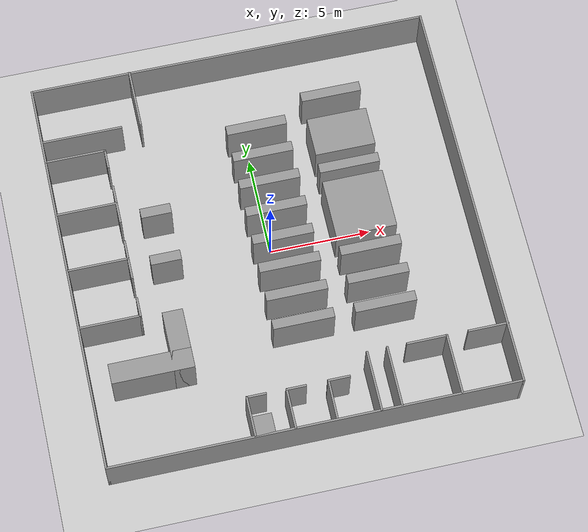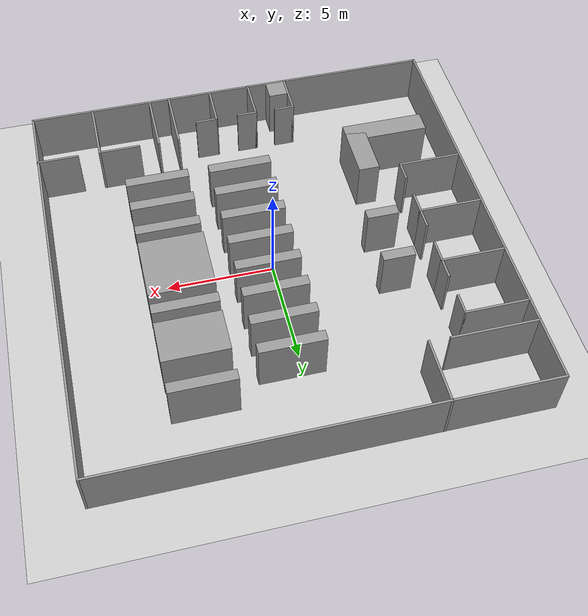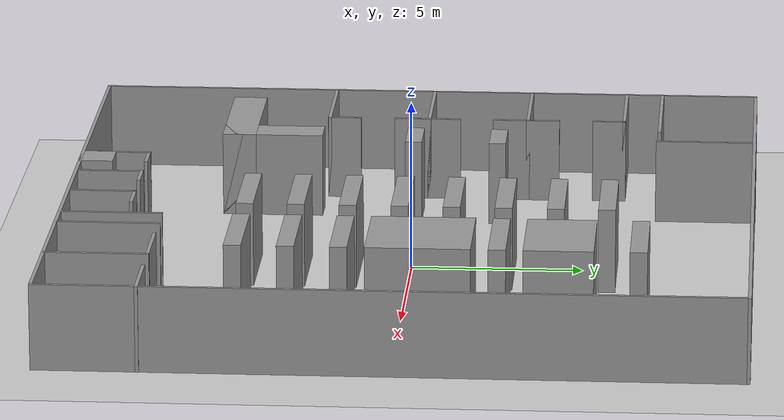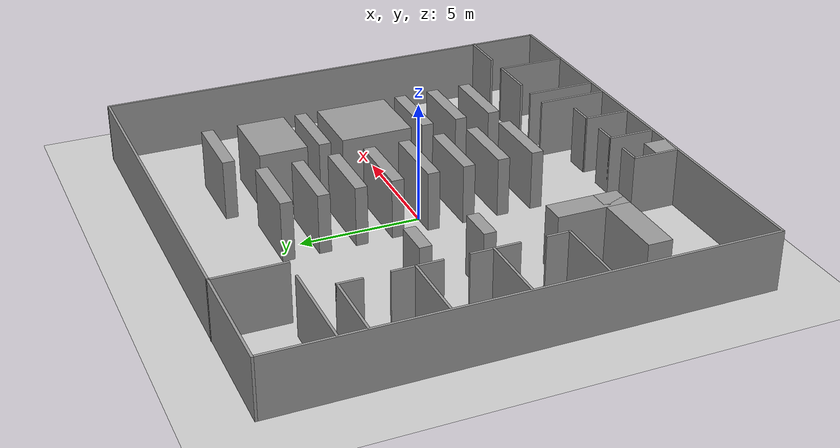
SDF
<sdf version="1.6">
 <world name="default">
  <light name="sun" type="directional">
   <pose>0 0 10 0 -0 0</pose>
   <diffuse>0.8 0.8 0.8 1</diffuse>
   <specular>0.2 0.2 0.2 1</specular>
   <attenuation>
    <range>1000</range>
    <constant>0.9</constant>
    <linear>0.01</linear>
    <quadratic>0.001</quadratic>
   </attenuation>
   <direction>-0.5 0.1 -0.9</direction>
  </light>
  <model name="ground_plane">
   <static>1</static>
   <link name="link">
    <collision name="collision">
     <geometry><plane><normal>0 0 1</normal><size>100 100</size></plane></geometry>
     <surface>
      <contact><collide_bitmask>65535</collide_bitmask></contact>
      <friction><ode><mu>100</mu><mu2>50</mu2></ode></friction>
     </surface>
    </collision>
    <visual name="visual">
     <cast_shadows>0</cast_shadows>
     <geometry><plane><normal>0 0 1</normal><size>100 100</size></plane></geometry>
     <material>
      <script><uri>file://media/materials/scripts/gazebo.material</uri><name>Gazebo/Grey</name></script>
     </material>
    </visual>
   </link>
  </model>
  <gravity>0 0 -9.8</gravity>
  <magnetic_field>6e-06 2.3e-05 -4.2e-05</magnetic_field>
  <atmosphere type="adiabatic"/>
  <physics name="default_physics" default="0" type="ode">
   <max_step_size>0.001</max_step_size>
   <real_time_factor>1</real_time_factor>
   <real_time_update_rate>1000</real_time_update_rate>
  </physics>
  <scene><ambient>0.4 0.4 0.4 1</ambient><background>0.7 0.7 0.7 1</background><shadows>1</shadows></scene>
  <audio><device>default</device></audio>
  <spherical_coordinates>
   <surface_model>EARTH_WGS84</surface_model>
   <latitude_deg>0</latitude_deg>
   <longitude_deg>0</longitude_deg>
   <elevation>0</elevation>
   <heading_deg>0</heading_deg>
  </spherical_coordinates>
  <model name="bibeg">
   <link name="Wall_1">
    <collision name="Wall_1_Collision">
     <geometry><box><size>20 0.1 2.5</size></box></geometry>
     <pose>0 0 1.25 0 -0 0</pose>
    </collision>
    <visual name="Wall_1_Visual">
     <pose>0 0 1.25 0 -0 0</pose>
     <geometry><box><size>20 0.1 2.5</size></box></geometry>
     <material>
      <script><uri>file://media/materials/scripts/gazebo.material</uri><name>Gazebo/Grey</name></script>
      <ambient>1 1 1 1</ambient>
     </material>
     <meta><layer>0</layer></meta>
    </visual>
    <pose>-0.009 -9.957 0 0 -0 0</pose>
   </link>
   <link name="Wall_11">
    <collision name="Wall_11_Collision">
     <geometry><box><size>2 0.1 2.5</size></box></geometry>
     <pose>0 0 1.25 0 -0 0</pose>
    </collision>
    <visual name="Wall_11_Visual">
     <pose>0 0 1.25 0 -0 0</pose>
     <geometry><box><size>2 0.1 2.5</size></box></geometry>
     <material>
      <script><uri>file://media/materials/scripts/gazebo.material</uri><name>Gazebo/Grey</name></script>
      <ambient>1 1 1 1</ambient>
     </material>
     <meta><layer>0</layer></meta>
    </visual>
    <pose>-1.003 -8.963 0 0 -0 1.5708</pose>
   </link>
   <link name="Wall_12">
    <collision name="Wall_12_Collision">
     <geometry><box><size>1 0.1 2.5</size></box></geometry>
     <pose>0 0 1.25 0 -0 0</pose>
    </collision>
    <visual name="Wall_12_Visual">
     <pose>0 0 1.25 0 -0 0</pose>
     <geometry><box><size>1 0.1 2.5</size></box></geometry>
     <material>
      <script><uri>file://media/materials/scripts/gazebo.material</uri><name>Gazebo/Grey</name></script>
      <ambient>1 1 1 1</ambient>
     </material>
     <meta><layer>0</layer></meta>
    </visual>
    <pose>-0.553 -8.013 0 0 -0 0</pose>
   </link>
   <link name="Wall_14">
    <collision name="Wall_14_Collision">
     <geometry><box><size>1.95 0.1 2.5</size></box></geometry>
     <pose>0 0 1.25 0 -0 0</pose>
    </collision>
    <visual name="Wall_14_Visual">
     <pose>0 0 1.25 0 -0 0</pose>
     <geometry><box><size>1.95 0.1 2.5</size></box></geometry>
     <material>
      <script><uri>file://media/materials/scripts/gazebo.material</uri><name>Gazebo/Grey</name></script>
      <ambient>1 1 1 1</ambient>
     </material>
     <meta><layer>0</layer></meta>
    </visual>
    <pose>0.998 -8.928 0 0 -0 1.55999</pose>
   </link>
   <link name="Wall_15">
    <collision name="Wall_15_Collision">
     <geometry><box><size>1.1 0.1 2.5</size></box></geometry>
     <pose>0 0 1.25 0 -0 0</pose>
    </collision>
    <visual name="Wall_15_Visual">
     <pose>0 0 1.25 0 -0 0</pose>
     <geometry><box><size>1.1 0.1 2.5</size></box></geometry>
     <material>
      <script><uri>file://media/materials/scripts/gazebo.material</uri><name>Gazebo/Grey</name></script>
      <ambient>1 1 1 1</ambient>
     </material>
     <meta><layer>0</layer></meta>
    </visual>
    <pose>1.508 -8.003 0 0 -0 0</pose>
   </link>
   <link name="Wall_17">
    <collision name="Wall_17_Collision">
     <geometry><box><size>3 0.1 2.5</size></box></geometry>
     <pose>0 0 1.25 0 -0 0</pose>
    </collision>
    <visual name="Wall_17_Visual">
     <pose>0 0 1.25 0 -0 0</pose>
     <geometry><box><size>3 0.1 2.5</size></box></geometry>
     <material>
      <script><uri>file://media/materials/scripts/gazebo.material</uri><name>Gazebo/Grey</name></script>
      <ambient>1 1 1 1</ambient>
     </material>
     <meta><layer>0</layer></meta>
    </visual>
    <pose>3.1 -8.48345 0 0 -0 1.5708</pose>
   </link>
   <link name="Wall_2">
    <collision name="Wall_2_Collision">
     <geometry><box><size>20 0.1 2.5</size></box></geometry>
     <pose>0 0 1.25 0 -0 0</pose>
    </collision>
    <visual name="Wall_2_Visual">
     <pose>0 0 1.25 0 -0 0</pose>
     <geometry><box><size>20 0.1 2.5</size></box></geometry>
     <material>
      <script><uri>file://media/materials/scripts/gazebo.material</uri><name>Gazebo/Grey</name></script>
      <ambient>1 1 1 1</ambient>
     </material>
     <meta><layer>0</layer></meta>
    </visual>
    <pose>9.941 -0.007 0 0 -0 1.5708</pose>
   </link>
   <link name="Wall_20">
    <collision name="Wall_20_Collision">
     <geometry><box><size>3 0.1 2.5</size></box></geometry>
     <pose>0 0 1.25 0 -0 0</pose>
    </collision>
    <visual name="Wall_20_Visual">
     <pose>0 0 1.25 0 -0 0</pose>
     <geometry><box><size>3 0.1 2.5</size></box></geometry>
     <material>
      <script><uri>file://media/materials/scripts/gazebo.material</uri><name>Gazebo/Grey</name></script>
      <ambient>1 1 1 1</ambient>
     </material>
     <meta><layer>0</layer></meta>
    </visual>
    <pose>4.085 -8.443 0 0 -0 1.5708</pose>
   </link>
   <link name="Wall_23">
    <collision name="Wall_23_Collision">
     <geometry><box><size>3 0.1 2.5</size></box></geometry>
     <pose>0 0 1.25 0 -0 0</pose>
    </collision>
    <visual name="Wall_23_Visual">
     <pose>0 0 1.25 0 -0 0</pose>
     <geometry><box><size>3 0.1 2.5</size></box></geometry>
     <material>
      <script><uri>file://media/materials/scripts/gazebo.material</uri><name>Gazebo/Grey</name></script>
      <ambient>1 1 1 1</ambient>
     </material>
     <meta><layer>0</layer></meta>
    </visual>
    <pose>6.98189 -8.46334 0 0 -0 1.5708</pose>
   </link>
   <link name="Wall_24">
    <collision name="Wall_24_Collision">
     <geometry><box><size>2 0.1 2.5</size></box></geometry>
     <pose>0 0 1.25 0 -0 0</pose>
    </collision>
    <visual name="Wall_24_Visual">
     <pose>0 0 1.25 0 -0 0</pose>
     <geometry><box><size>2 0.1 2.5</size></box></geometry>
     <material>
      <script><uri>file://media/materials/scripts/gazebo.material</uri><name>Gazebo/Grey</name></script>
      <ambient>1 1 1 1</ambient>
     </material>
     <meta><layer>0</layer></meta>
    </visual>
    <pose>6.01177 -7.01334 0 0 -0 3.14159</pose>
   </link>
   <link name="Wall_26">
    <collision name="Wall_26_Collision">
     <geometry><box><size>2 0.1 2.5</size></box></geometry>
     <pose>0 0 1.25 0 -0 0</pose>
    </collision>
    <visual name="Wall_26_Visual">
     <pose>0 0 1.25 0 -0 0</pose>
     <geometry><box><size>2 0.1 2.5</size></box></geometry>
     <material>
      <script><uri>file://media/materials/scripts/gazebo.material</uri><name>Gazebo/Grey</name></script>
      <ambient>1 1 1 1</ambient>
     </material>
     <meta><layer>0</layer></meta>
    </visual>
    <pose>9.009 -7.017 0 0 -0 3.14159</pose>
   </link>
   <link name="Wall_28">
    <collision name="Wall_28_Collision">
     <geometry><box><size>3 0.1 2.5</size></box></geometry>
     <pose>0 0 1.25 0 -0 0</pose>
    </collision>
    <visual name="Wall_28_Visual">
     <pose>0 0 1.25 0 -0 0</pose>
     <geometry><box><size>3 0.1 2.5</size></box></geometry>
     <material>
      <script><uri>file://media/materials/scripts/gazebo.material</uri><name>Gazebo/Grey</name></script>
      <ambient>1 1 1 1</ambient>
     </material>
     <meta><layer>0</layer></meta>
    </visual>
    <pose>-5.017 8.507 0 0 -0 -1.5708</pose>
   </link>
   <link name="Wall_3">
    <collision name="Wall_3_Collision">
     <geometry><box><size>20 0.1 2.5</size></box></geometry>
     <pose>0 0 1.25 0 -0 0</pose>
    </collision>
    <visual name="Wall_3_Visual">
     <pose>0 0 1.25 0 -0 0</pose>
     <geometry><box><size>20 0.1 2.5</size></box></geometry>
     <material>
      <script><uri>file://media/materials/scripts/gazebo.material</uri><name>Gazebo/Grey</name></script>
      <ambient>1 1 1 1</ambient>
     </material>
     <meta><layer>0</layer></meta>
    </visual>
    <pose>-0.009 9.943 0 0 -0 3.14159</pose>
   </link>
   <link name="Wall_30">
    <collision name="Wall_30_Collision">
     <geometry><box><size>4 0.1 2.5</size></box></geometry>
     <pose>0 0 1.25 0 -0 0</pose>
    </collision>
    <visual name="Wall_30_Visual">
     <pose>0 0 1.25 0 -0 0</pose>
     <geometry><box><size>4 0.1 2.5</size></box></geometry>
     <material>
      <script><uri>file://media/materials/scripts/gazebo.material</uri><name>Gazebo/Grey</name></script>
      <ambient>1 1 1 1</ambient>
     </material>
     <meta><layer>0</layer></meta>
    </visual>
    <pose>-7.94645 7.08678 0 0 -0 0</pose>
   </link>
   <link name="Wall_33">
    <collision name="Wall_33_Collision">
     <geometry><box><size>3 0.1 2.5</size></box></geometry>
     <pose>0 0 1.25 0 -0 0</pose>
    </collision>
    <visual name="Wall_33_Visual">
     <pose>0 0 1.25 0 -0 0</pose>
     <geometry><box><size>3 0.1 2.5</size></box></geometry>
     <material>
      <script><uri>file://media/materials/scripts/gazebo.material</uri><name>Gazebo/Grey</name></script>
      <ambient>1 1 1 1</ambient>
     </material>
     <meta><layer>0</layer></meta>
    </visual>
    <pose>-8.46 6.002 0 0 -0 0</pose>
   </link>
   <link name="Wall_34">
    <collision name="Wall_34_Collision">
     <geometry><box><size>1 0.1 2.5</size></box></geometry>
     <pose>0 0 1.25 0 -0 0</pose>
    </collision>
    <visual name="Wall_34_Visual">
     <pose>0 0 1.25 0 -0 0</pose>
     <geometry><box><size>1 0.1 2.5</size></box></geometry>
     <material>
      <script><uri>file://media/materials/scripts/gazebo.material</uri><name>Gazebo/Grey</name></script>
      <ambient>1 1 1 1</ambient>
     </material>
     <meta><layer>0</layer></meta>
    </visual>
    <pose>-7.01 5.552 0 0 -0 -1.5708</pose>
   </link>
   <link name="Wall_36">
    <collision name="Wall_36_Collision">
     <geometry><box><size>3 0.1 2.5</size></box></geometry>
     <pose>0 0 1.25 0 -0 0</pose>
    </collision>
    <visual name="Wall_36_Visual">
     <pose>0 0 1.25 0 -0 0</pose>
     <geometry><box><size>3 0.1 2.5</size></box></geometry>
     <material>
      <script><uri>file://media/materials/scripts/gazebo.material</uri><name>Gazebo/Grey</name></script>
      <ambient>1 1 1 1</ambient>
     </material>
     <meta><layer>0</layer></meta>
    </visual>
    <pose>-8.433 3.093 0 0 -0 0</pose>
   </link>
   <link name="Wall_37">
    <collision name="Wall_37_Collision">
     <geometry><box><size>1 0.1 2.5</size></box></geometry>
     <pose>0 0 1.25 0 -0 0</pose>
    </collision>
    <visual name="Wall_37_Visual">
     <pose>0 0 1.25 0 -0 0</pose>
     <geometry><box><size>1 0.1 2.5</size></box></geometry>
     <material>
      <script><uri>file://media/materials/scripts/gazebo.material</uri><name>Gazebo/Grey</name></script>
      <ambient>1 1 1 1</ambient>
     </material>
     <meta><layer>0</layer></meta>
    </visual>
    <pose>-6.983 3.543 0 0 -0 1.5708</pose>
   </link>
   <link name="Wall_4">
    <collision name="Wall_4_Collision">
     <geometry><box><size>20 0.1 2.5</size></box></geometry>
     <pose>0 0 1.25 0 -0 0</pose>
    </collision>
    <visual name="Wall_4_Visual">
     <pose>0 0 1.25 0 -0 0</pose>
     <geometry><box><size>20 0.1 2.5</size></box></geometry>
     <material>
      <script><uri>file://media/materials/scripts/gazebo.material</uri><name>Gazebo/Grey</name></script>
      <ambient>1 1 1 1</ambient>
     </material>
     <meta><layer>0</layer></meta>
    </visual>
    <pose>-9.959 -0.007 0 0 -0 -1.5708</pose>
   </link>
   <link name="Wall_40">
    <collision name="Wall_40_Collision">
     <geometry><box><size>1.1 0.1 2.5</size></box></geometry>
     <pose>0 0 1.25 0 -0 0</pose>
    </collision>
    <visual name="Wall_40_Visual">
     <pose>0 0 1.25 0 -0 0</pose>
     <geometry><box><size>1.1 0.1 2.5</size></box></geometry>
     <material>
      <script><uri>file://media/materials/scripts/gazebo.material</uri><name>Gazebo/Grey</name></script>
      <ambient>1 1 1 1</ambient>
     </material>
     <meta><layer>0</layer></meta>
    </visual>
    <pose>-6.983 2.593 0 0 -0 -1.5708</pose>
   </link>
   <link name="Wall_42">
    <collision name="Wall_42_Collision">
     <geometry><box><size>3 0.1 2.5</size></box></geometry>
     <pose>0 0 1.25 0 -0 0</pose>
    </collision>
    <visual name="Wall_42_Visual">
     <pose>0 0 1.25 0 -0 0</pose>
     <geometry><box><size>3 0.1 2.5</size></box></geometry>
     <material>
      <script><uri>file://media/materials/scripts/gazebo.material</uri><name>Gazebo/Grey</name></script>
      <ambient>1 1 1 1</ambient>
     </material>
     <meta><layer>0</layer></meta>
    </visual>
    <pose>-8.433 0.104 0 0 -0 0</pose>
   </link>
   <link name="Wall_43">
    <collision name="Wall_43_Collision">
     <geometry><box><size>1 0.1 2.5</size></box></geometry>
     <pose>0 0 1.25 0 -0 0</pose>
    </collision>
    <visual name="Wall_43_Visual">
     <pose>0 0 1.25 0 -0 0</pose>
     <geometry><box><size>1 0.1 2.5</size></box></geometry>
     <material>
      <script><uri>file://media/materials/scripts/gazebo.material</uri><name>Gazebo/Grey</name></script>
      <ambient>1 1 1 1</ambient>
     </material>
     <meta><layer>0</layer></meta>
    </visual>
    <pose>-6.983 0.554 0 0 -0 1.5708</pose>
   </link>
   <link name="Wall_45">
    <collision name="Wall_45_Collision">
     <geometry><box><size>1.1 0.1 2.5</size></box></geometry>
     <pose>0 0 1.25 0 -0 0</pose>
    </collision>
    <visual name="Wall_45_Visual">
     <pose>0 0 1.25 0 -0 0</pose>
     <geometry><box><size>1.1 0.1 2.5</size></box></geometry>
     <material>
      <script><uri>file://media/materials/scripts/gazebo.material</uri><name>Gazebo/Grey</name></script>
      <ambient>1 1 1 1</ambient>
     </material>
     <meta><layer>0</layer></meta>
    </visual>
    <pose>-6.983 -0.396 0 0 -0 -1.5708</pose>
   </link>
   <link name="Wall_47">
    <collision name="Wall_47_Collision">
     <geometry><box><size>3 0.1 2.5</size></box></geometry>
     <pose>0 0 1.25 0 -0 0</pose>
    </collision>
    <visual name="Wall_47_Visual">
     <pose>0 0 1.25 0 -0 0</pose>
     <geometry><box><size>3 0.1 2.5</size></box></geometry>
     <material>
      <script><uri>file://media/materials/scripts/gazebo.material</uri><name>Gazebo/Grey</name></script>
      <ambient>1 1 1 1</ambient>
     </material>
     <meta><layer>0</layer></meta>
    </visual>
    <pose>-8.42 -2.911 0 0 -0 0</pose>
   </link>
   <link name="Wall_48">
    <collision name="Wall_48_Collision">
     <geometry><box><size>1 0.1 2.5</size></box></geometry>
     <pose>0 0 1.25 0 -0 0</pose>
    </collision>
    <visual name="Wall_48_Visual">
     <pose>0 0 1.25 0 -0 0</pose>
     <geometry><box><size>1 0.1 2.5</size></box></geometry>
     <material>
      <script><uri>file://media/materials/scripts/gazebo.material</uri><name>Gazebo/Grey</name></script>
      <ambient>1 1 1 1</ambient>
     </material>
     <meta><layer>0</layer></meta>
    </visual>
    <pose>-6.97 -2.461 0 0 -0 1.5708</pose>
   </link>
   <link name="Wall_50">
    <collision name="Wall_50_Collision">
     <geometry><box><size>4 1 2.5</size></box></geometry>
     <pose>0 0 1.25 0 -0 0</pose>
    </collision>
    <visual name="Wall_50_Visual">
     <pose>0 0 1.25 0 -0 0</pose>
     <geometry><box><size>4 1 2.5</size></box></geometry>
     <material>
      <script><uri>file://media/materials/scripts/gazebo.material</uri><name>Gazebo/Grey</name></script>
      <ambient>1 1 1 1</ambient>
     </material>
     <meta><layer>0</layer></meta>
    </visual>
    <pose>-6.94939 -5.487 0 0 -0 0</pose>
   </link>
   <link name="Wall_51">
    <collision name="Wall_51_Collision">
     <geometry><box><size>3 1 2.5</size></box></geometry>
     <pose>0 0 1.25 0 -0 0</pose>
    </collision>
    <visual name="Wall_51_Visual">
     <pose>0 0 1.25 0 -0 0</pose>
     <geometry><box><size>3 1 2.5</size></box></geometry>
     <material>
      <script><uri>file://media/materials/scripts/gazebo.material</uri><name>Gazebo/Grey</name></script>
      <ambient>1 1 1 1</ambient>
     </material>
     <meta><layer>0</layer></meta>
    </visual>
    <pose>-5.44939 -4.487 0 0 -0 1.5708</pose>
   </link>
   <link name="Wall_53">
    <collision name="Wall_53_Collision">
     <geometry><box><size>1.5 0.5 2.5</size></box></geometry>
     <pose>0 0 1.25 0 -0 0</pose>
    </collision>
    <visual name="Wall_53_Visual">
     <pose>0 0 1.25 0 -0 0</pose>
     <geometry><box><size>1.5 0.5 2.5</size></box></geometry>
     <material>
      <script><uri>file://media/materials/scripts/gazebo.material</uri><name>Gazebo/Grey</name></script>
      <ambient>1 1 1 1</ambient>
     </material>
     <meta><layer>0</layer></meta>
    </visual>
    <pose>-5.22251 -0.227 0 0 -0 0</pose>
   </link>
   <link name="Wall_55">
    <collision name="Wall_55_Collision">
     <geometry><box><size>1.5 0.5 2.5</size></box></geometry>
     <pose>0 0 1.25 0 -0 0</pose>
    </collision>
    <visual name="Wall_55_Visual">
     <pose>0 0 1.25 0 -0 0</pose>
     <geometry><box><size>1.5 0.5 2.5</size></box></geometry>
     <material>
      <script><uri>file://media/materials/scripts/gazebo.material</uri><name>Gazebo/Grey</name></script>
      <ambient>1 1 1 1</ambient>
     </material>
     <meta><layer>0</layer></meta>
    </visual>
    <pose>-5.20702 2.28602 0 0 -0 0</pose>
   </link>
   <link name="Wall_57">
    <collision name="Wall_57_Collision">
     <geometry><box><size>3 0.5 2.5</size></box></geometry>
     <pose>0 0 1.25 0 -0 0</pose>
    </collision>
    <visual name="Wall_57_Visual">
     <pose>0 0 1.25 0 -0 0</pose>
     <geometry><box><size>3 0.5 2.5</size></box></geometry>
     <material>
      <script><uri>file://media/materials/scripts/gazebo.material</uri><name>Gazebo/Grey</name></script>
      <ambient>1 1 1 1</ambient>
     </material>
     <meta><layer>0</layer></meta>
    </visual>
    <pose>0.538131 5.76561 0 0 -0 0</pose>
   </link>
   <link name="Wall_59">
    <collision name="Wall_59_Collision">
     <geometry><box><size>3 0.5 2.5</size></box></geometry>
     <pose>0 0 1.25 0 -0 0</pose>
    </collision>
    <visual name="Wall_59_Visual">
     <pose>0 0 1.25 0 -0 0</pose>
     <geometry><box><size>3 0.5 2.5</size></box></geometry>
     <material>
      <script><uri>file://media/materials/scripts/gazebo.material</uri><name>Gazebo/Grey</name></script>
      <ambient>1 1 1 1</ambient>
     </material>
     <meta><layer>0</layer></meta>
    </visual>
    <pose>0.537392 4.28587 0 0 -0 0</pose>
   </link>
   <link name="Wall_61">
    <collision name="Wall_61_Collision">
     <geometry><box><size>3 0.5 2.5</size></box></geometry>
     <pose>0 0 1.25 0 -0 0</pose>
    </collision>
    <visual name="Wall_61_Visual">
     <pose>0 0 1.25 0 -0 0</pose>
     <geometry><box><size>3 0.5 2.5</size></box></geometry>
     <material>
      <script><uri>file://media/materials/scripts/gazebo.material</uri><name>Gazebo/Grey</name></script>
      <ambient>1 1 1 1</ambient>
     </material>
     <meta><layer>0</layer></meta>
    </visual>
    <pose>0.537915 2.78187 0 0 -0 0</pose>
   </link>
   <link name="Wall_63">
    <collision name="Wall_63_Collision">
     <geometry><box><size>3 0.5 2.5</size></box></geometry>
     <pose>0 0 1.25 0 -0 0</pose>
    </collision>
    <visual name="Wall_63_Visual">
     <pose>0 0 1.25 0 -0 0</pose>
     <geometry><box><size>3 0.5 2.5</size></box></geometry>
     <material>
      <script><uri>file://media/materials/scripts/gazebo.material</uri><name>Gazebo/Grey</name></script>
      <ambient>1 1 1 1</ambient>
     </material>
     <meta><layer>0</layer></meta>
    </visual>
    <pose>0.538131 1.27887 0 0 -0 0</pose>
   </link>
   <link name="Wall_65">
    <collision name="Wall_65_Collision">
     <geometry><box><size>3 0.5 2.5</size></box></geometry>
     <pose>0 0 1.25 0 -0 0</pose>
    </collision>
    <visual name="Wall_65_Visual">
     <pose>0 0 1.25 0 -0 0</pose>
     <geometry><box><size>3 0.5 2.5</size></box></geometry>
     <material>
      <script><uri>file://media/materials/scripts/gazebo.material</uri><name>Gazebo/Grey</name></script>
      <ambient>1 1 1 1</ambient>
     </material>
     <meta><layer>0</layer></meta>
    </visual>
    <pose>0.537392 -0.225261 0 0 -0 0</pose>
   </link>
   <link name="Wall_67">
    <collision name="Wall_67_Collision">
     <geometry><box><size>3 0.5 2.5</size></box></geometry>
     <pose>0 0 1.25 0 -0 0</pose>
    </collision>
    <visual name="Wall_67_Visual">
     <pose>0 0 1.25 0 -0 0</pose>
     <geometry><box><size>3 0.5 2.5</size></box></geometry>
     <material>
      <script><uri>file://media/materials/scripts/gazebo.material</uri><name>Gazebo/Grey</name></script>
      <ambient>1 1 1 1</ambient>
     </material>
     <meta><layer>0</layer></meta>
    </visual>
    <pose>0.537392 -1.72813 0 0 -0 0</pose>
   </link>
   <link name="Wall_69">
    <collision name="Wall_69_Collision">
     <geometry><box><size>3 0.5 2.5</size></box></geometry>
     <pose>0 0 1.25 0 -0 0</pose>
    </collision>
    <visual name="Wall_69_Visual">
     <pose>0 0 1.25 0 -0 0</pose>
     <geometry><box><size>3 0.5 2.5</size></box></geometry>
     <material>
      <script><uri>file://media/materials/scripts/gazebo.material</uri><name>Gazebo/Grey</name></script>
      <ambient>1 1 1 1</ambient>
     </material>
     <meta><layer>0</layer></meta>
    </visual>
    <pose>0.536217 -3.23139 0 0 -0 3.14159</pose>
   </link>
   <link name="Wall_7">
    <collision name="Wall_7_Collision">
     <geometry><box><size>2 0.1 2.5</size></box></geometry>
     <pose>0 0 1.25 0 -0 0</pose>
    </collision>
    <visual name="Wall_7_Visual">
     <pose>0 0 1.25 0 -0 0</pose>
     <geometry><box><size>2 0.1 2.5</size></box></geometry>
     <material>
      <script><uri>file://media/materials/scripts/gazebo.material</uri><name>Gazebo/Grey</name></script>
      <ambient>1 1 1 1</ambient>
     </material>
     <meta><layer>0</layer></meta>
    </visual>
    <pose>-2.914 -8.943 0 0 -0 1.5708</pose>
   </link>
   <link name="Wall_71">
    <collision name="Wall_71_Collision">
     <geometry><box><size>3 0.5 2.5</size></box></geometry>
     <pose>0 0 1.25 0 -0 0</pose>
    </collision>
    <visual name="Wall_71_Visual">
     <pose>0 0 1.25 0 -0 0</pose>
     <geometry><box><size>3 0.5 2.5</size></box></geometry>
     <material>
      <script><uri>file://media/materials/scripts/gazebo.material</uri><name>Gazebo/Grey</name></script>
      <ambient>1 1 1 1</ambient>
     </material>
     <meta><layer>0</layer></meta>
    </visual>
    <pose>0.537262 -4.712 0 0 -0 0</pose>
   </link>
   <link name="Wall_73">
    <collision name="Wall_73_Collision">
     <geometry><box><size>3 0.5 2.5</size></box></geometry>
     <pose>0 0 1.25 0 -0 0</pose>
    </collision>
    <visual name="Wall_73_Visual">
     <pose>0 0 1.25 0 -0 0</pose>
     <geometry><box><size>3 0.5 2.5</size></box></geometry>
     <material>
      <script><uri>file://media/materials/scripts/gazebo.material</uri><name>Gazebo/Grey</name></script>
      <ambient>1 1 1 1</ambient>
     </material>
     <meta><layer>0</layer></meta>
    </visual>
    <pose>4.53978 -4.71213 0 0 -0 0</pose>
   </link>
   <link name="Wall_75">
    <collision name="Wall_75_Collision">
     <geometry><box><size>3 0.5 2.5</size></box></geometry>
     <pose>0 0 1.25 0 -0 0</pose>
    </collision>
    <visual name="Wall_75_Visual">
     <pose>0 0 1.25 0 -0 0</pose>
     <geometry><box><size>3 0.5 2.5</size></box></geometry>
     <material>
      <script><uri>file://media/materials/scripts/gazebo.material</uri><name>Gazebo/Grey</name></script>
      <ambient>1 1 1 1</ambient>
     </material>
     <meta><layer>0</layer></meta>
    </visual>
    <pose>4.53918 -3.20913 0 0 -0 0</pose>
   </link>
   <link name="Wall_77">
    <collision name="Wall_77_Collision">
     <geometry><box><size>3 0.5 2.5</size></box></geometry>
     <pose>0 0 1.25 0 -0 0</pose>
    </collision>
    <visual name="Wall_77_Visual">
     <pose>0 0 1.25 0 -0 0</pose>
     <geometry><box><size>3 0.5 2.5</size></box></geometry>
     <material>
      <script><uri>file://media/materials/scripts/gazebo.material</uri><name>Gazebo/Grey</name></script>
      <ambient>1 1 1 1</ambient>
     </material>
     <meta><layer>0</layer></meta>
    </visual>
    <pose>4.53965 -1.705 0 0 -0 0</pose>
   </link>
   <link name="Wall_79">
    <collision name="Wall_79_Collision">
     <geometry><box><size>3.01 3 2.5</size></box></geometry>
     <pose>0 0 1.25 0 -0 0</pose>
    </collision>
    <visual name="Wall_79_Visual">
     <pose>0 0 1.25 0 -0 0</pose>
     <geometry><box><size>3.01 3 2.5</size></box></geometry>
     <material>
      <script><uri>file://media/materials/scripts/gazebo.material</uri><name>Gazebo/Grey</name></script>
      <ambient>1 1 1 1</ambient>
     </material>
     <meta><layer>0</layer></meta>
    </visual>
    <pose>4.533 0.538 0 0 -0 3.14159</pose>
   </link>
   <link name="Wall_8">
    <collision name="Wall_8_Collision">
     <geometry><box><size>1 0.1 2.5</size></box></geometry>
     <pose>0 0 1.25 0 -0 0</pose>
    </collision>
    <visual name="Wall_8_Visual">
     <pose>0 0 1.25 0 -0 0</pose>
     <geometry><box><size>1 0.1 2.5</size></box></geometry>
     <material>
      <script><uri>file://media/materials/scripts/gazebo.material</uri><name>Gazebo/Grey</name></script>
      <ambient>1 1 1 1</ambient>
     </material>
     <meta><layer>0</layer></meta>
    </visual>
    <pose>-2.464 -7.993 0 0 -0 0</pose>
   </link>
   <link name="Wall_81">
    <collision name="Wall_81_Collision">
     <geometry><box><size>3 0.5 2.5</size></box></geometry>
     <pose>0 0 1.25 0 -0 0</pose>
    </collision>
    <visual name="Wall_81_Visual">
     <pose>0 0 1.25 0 -0 0</pose>
     <geometry><box><size>3 0.5 2.5</size></box></geometry>
     <material>
      <script><uri>file://media/materials/scripts/gazebo.material</uri><name>Gazebo/Grey</name></script>
      <ambient>1 1 1 1</ambient>
     </material>
     <meta><layer>0</layer></meta>
    </visual>
    <pose>4.53892 2.78174 0 0 -0 0</pose>
   </link>
   <link name="Wall_83">
    <collision name="Wall_83_Collision">
     <geometry><box><size>3 2 2.5</size></box></geometry>
     <pose>0 0 1.25 0 -0 0</pose>
    </collision>
    <visual name="Wall_83_Visual">
     <pose>0 0 1.25 0 -0 0</pose>
     <geometry><box><size>3 2 2.5</size></box></geometry>
     <material>
      <script><uri>file://media/materials/scripts/gazebo.material</uri><name>Gazebo/Grey</name></script>
      <ambient>1 1 1 1</ambient>
     </material>
     <meta><layer>0</layer></meta>
    </visual>
    <pose>4.54722 4.51705 0 0 -0 3.14159</pose>
   </link>
   <link name="Wall_85">
    <collision name="Wall_85_Collision">
     <geometry><box><size>3 0.5 2.5</size></box></geometry>
     <pose>0 0 1.25 0 -0 0</pose>
    </collision>
    <visual name="Wall_85_Visual">
     <pose>0 0 1.25 0 -0 0</pose>
     <geometry><box><size>3 0.5 2.5</size></box></geometry>
     <material>
      <script><uri>file://media/materials/scripts/gazebo.material</uri><name>Gazebo/Grey</name></script>
      <ambient>1 1 1 1</ambient>
     </material>
     <meta><layer>0</layer></meta>
    </visual>
    <pose>4.53939 6.78374 0 0 -0 0</pose>
   </link>
   <link name="Wall_89">
    <collision name="Wall_89_Collision">
     <geometry><box><size>1.01 1 2.5</size></box></geometry>
     <pose>0 0 1.25 0 -0 0</pose>
    </collision>
    <visual name="Wall_89_Visual">
     <pose>0 0 1.25 0 -0 0</pose>
     <geometry><box><size>1.01 1 2.5</size></box></geometry>
     <material>
      <script><uri>file://media/materials/scripts/gazebo.material</uri><name>Gazebo/Grey</name></script>
      <ambient>1 1 1 1</ambient>
     </material>
     <meta><layer>0</layer></meta>
    </visual>
    <pose>-2.45184 -9.47684 0 0 -0 3.14159</pose>
   </link>
   <static>1</static>
  </model>
 </world>
</sdf>
